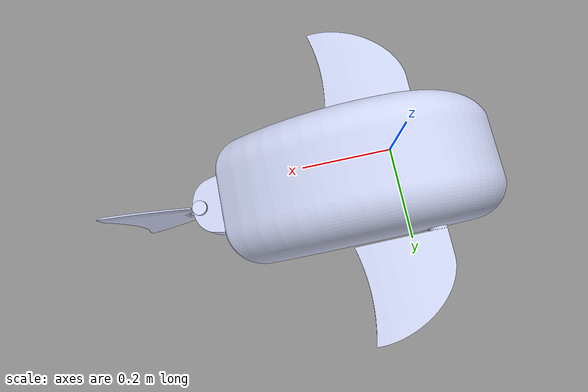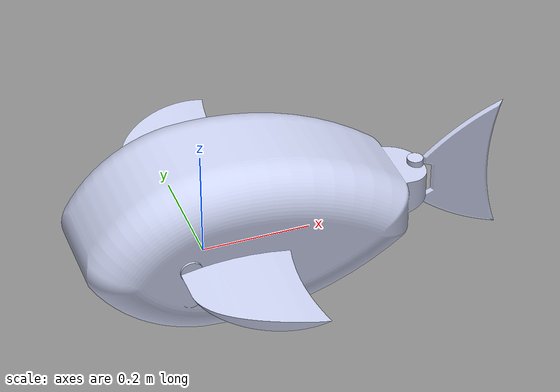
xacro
<robot name="fish_hpurv" xmlns:xacro="http://www.ros.org/wiki/xacro">

  <link name="link_base">
    <inertial>
      <origin xyz="0.0325815 0.0493006 -0.0204279" rpy="1.57 0 0"/>
      <mass value="12"/>  <!-- assume base mass remains 12 kg -->
      <inertia ixx="0.01" ixy="0" ixz="0" iyy="0.01" iyz="0" izz="0.01"/>
    </inertial>
    <visual>
      <origin xyz="0.0325815 0.0493006 0.02" rpy="1.57 0 0"/>
      <geometry>
        <mesh filename="$(find fish_hpurv)/meshes/link_base.stl"/>
      </geometry>
      <material name="link_base_material">
        <color rgba="0.796078 0.823529 0.937255 1.0"/>
      </material>
    </visual>
    <collision>
      <origin xyz="0.0325815 0.0493006 -0.0204279" rpy="1.57 0 0"/>
      <geometry>
        <mesh filename="$(find fish_hpurv)/meshes/link_base.stl"/>
      </geometry>
    </collision>
  </link>

  <link name="link_caudal">
    <inertial>
      <origin xyz="-0.378805 0 -0.05" rpy="1.5708 0 0"/>
      <mass value="0.2"/>
      <inertia ixx="0.005" ixy="0" ixz="0" iyy="0.005" iyz="0" izz="0.005"/>
    </inertial>
    <visual>
      <origin xyz="-0.378805 0 -0.05" rpy="1.5708 0 0"/>
      <geometry>
        <mesh filename="$(find fish_hpurv)/meshes/link_caudal.stl"/>
      </geometry>
      <material name="link_caudal_material">
        <color rgba="0.796078 0.823529 0.937255 1.0"/>
      </material>
    </visual>
    <collision>
      <origin xyz="-0.378805 0 -0.05" rpy="1.5708 0 0"/>
      <geometry>
        <mesh filename="$(find fish_hpurv)/meshes/link_caudal.stl"/>
      </geometry>
    </collision>
  </link>

  <joint name="caudal_joint" type="revolute">
    <origin xyz="0.425323 0.05 0.06" rpy="0 0 0"/>
    <parent link="link_base"/>
    <child link="link_caudal"/>
    <axis xyz="0 0 1"/>
    <limit effort="10" velocity="10" lower="-0.523599" upper="0.523599"/>
  </joint>

  <link name="link_pectoral_left">
    <inertial>
      <origin xyz="0.0829833 -0.0470575 0.13" rpy="3.14 0 0"/>
      <mass value="0.1"/>
      <inertia ixx="0.001" ixy="0" ixz="0" iyy="0.001" iyz="0" izz="0.001"/>
    </inertial>
    <visual>
      <origin xyz="0.0829833 -0.0470575 0.13" rpy="3.14 0 0"/>
      <geometry>
        <mesh filename="$(find fish_hpurv)/meshes/link_pectoral_left.stl"/>
      </geometry>
      <material name="link_pectoral_left_material">
        <color rgba="0.796078 0.823529 0.937255 1.0"/>
      </material>
    </visual>
    <collision>
      <origin xyz="0.0829833 -0.0470575 0.13" rpy="3.14 0 0"/>
      <geometry>
        <mesh filename="$(find fish_hpurv)/meshes/link_pectoral_left.stl"/>
      </geometry>
    </collision>
  </link>

  <joint name="joint1" type="revolute">
    <origin xyz="-0.05 0.18 0.035" rpy="1.57 0 0"/>
    <parent link="link_base"/>
    <child link="link_pectoral_left"/>
    <axis xyz="0 0 1"/>
    <limit effort="10" velocity="10" lower="-0.785398" upper="0.785398"/>
  </joint>

  <link name="link_pectoral_right">
    <inertial>
      <origin xyz="0.0829833 0.0470575 0.13" rpy="0 0 0"/>
      <mass value="0.1"/>
      <inertia ixx="0.001" ixy="0" ixz="0" iyy="0.001" iyz="0" izz="0.001"/>
    </inertial>
    <visual>
      <origin xyz="0.0829833 0.0470575 0.13" rpy="0 0 0"/>
      <geometry>
        <mesh filename="$(find fish_hpurv)/meshes/link_pectoral_right.stl"/>
      </geometry>
      <material name="link_pectoral_right_material">
        <color rgba="0.796078 0.823529 0.937255 1.0"/>
      </material>
    </visual>
    <collision>
      <origin xyz="0.0829833 0.0470575 0.13" rpy="0 0 0"/>
      <geometry>
        <mesh filename="$(find fish_hpurv)/meshes/link_pectoral_right.stl"/>
      </geometry>
    </collision>
  </link>

  <joint name="joint2" type="revolute">
    <origin xyz="-0.05 -0.08 0.035" rpy="-1.57 0 0"/>
    <parent link="link_base"/>
    <child link="link_pectoral_right"/>
    <axis xyz="0 0 1"/>
    <limit effort="10" velocity="10" lower="-0.785398" upper="0.785398"/>
  </joint>

  <gazebo>

    <plugin name="buoyancy_plugin" filename="libBuoyancyPlugin.so">
      <fluid_density>1000</fluid_density>
      <link name="link_base">
        <volume>0.0120</volume>
        <center_of_volume>0.0325815 0.0493006 0.02</center_of_volume>
      </link>
      <link name="link_caudal">
        <volume>0.0002</volume>
        <center_of_volume>-0.378805 0 -0.05</center_of_volume>
      </link>
      <link name="link_pectoral_left">
        <volume>0.0001</volume>
        <center_of_volume>0.0829833 -0.0470575 0.13</center_of_volume>
      </link>
      <link name="link_pectoral_right">
        <volume>0.0001</volume>
        <center_of_volume>0.0829833 0.0470575 0.13</center_of_volume>
      </link>
    </plugin>
    <plugin name="gazebo_ros2_control" filename="libgazebo_ros2_control.so">
      <robotNamespace>/</robotNamespace>
      <parameters>$(find fish_hpurv)/config/my_controllers.yaml</parameters>
    </plugin>
    <plugin name="caudal_force_plugin" filename="/home/lohithvarma2004/ros2_ws/install/fish_hpurv/lib/fish_hpurv/libCaudalForcePlugin.so"/>
  </gazebo>

  <ros2_control name="FishSim" type="system">
    <hardware>
      <plugin>gazebo_ros2_control/GazeboSystem</plugin>
    </hardware>
    <joint name="caudal_joint">
      <command_interface name="position"/>
      <state_interface name="position"/>
      <state_interface name="velocity"/>
    </joint>
    <joint name="joint1">
      <command_interface name="position"/>
      <state_interface name="position"/>
      <state_interface name="velocity"/>
    </joint>
    <joint name="joint2">
      <command_interface name="position"/>
      <state_interface name="position"/>
      <state_interface name="velocity"/>
    </joint>
  </ros2_control>

</robot>
